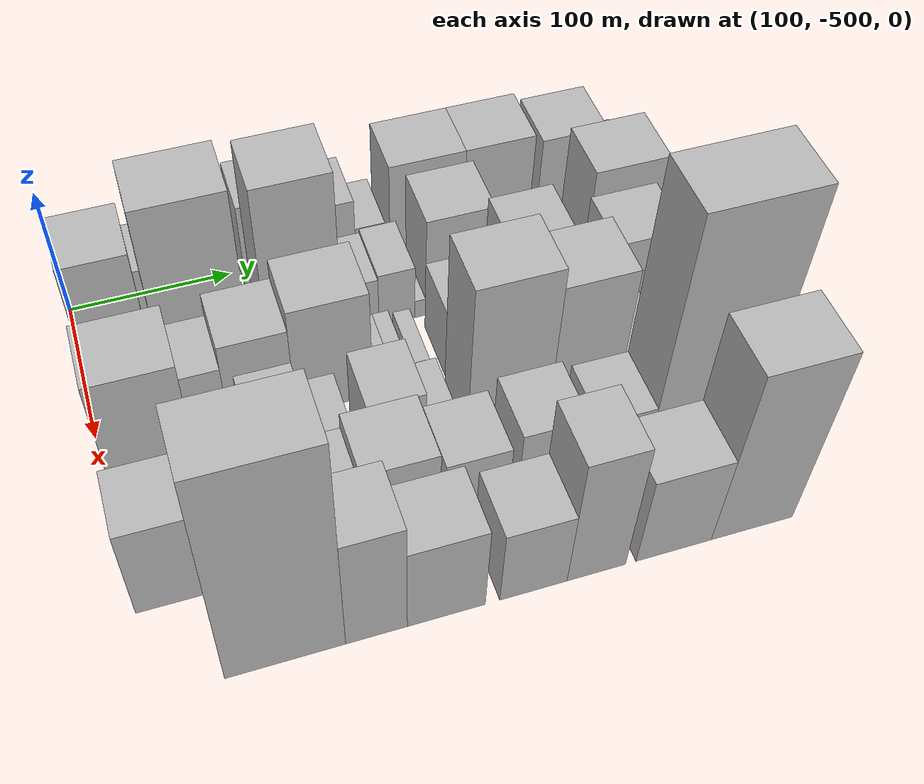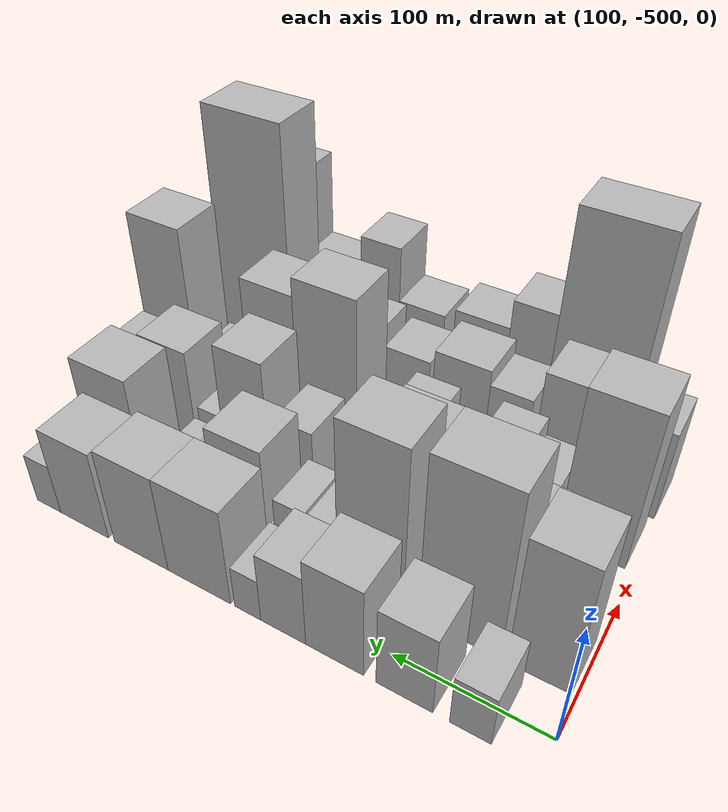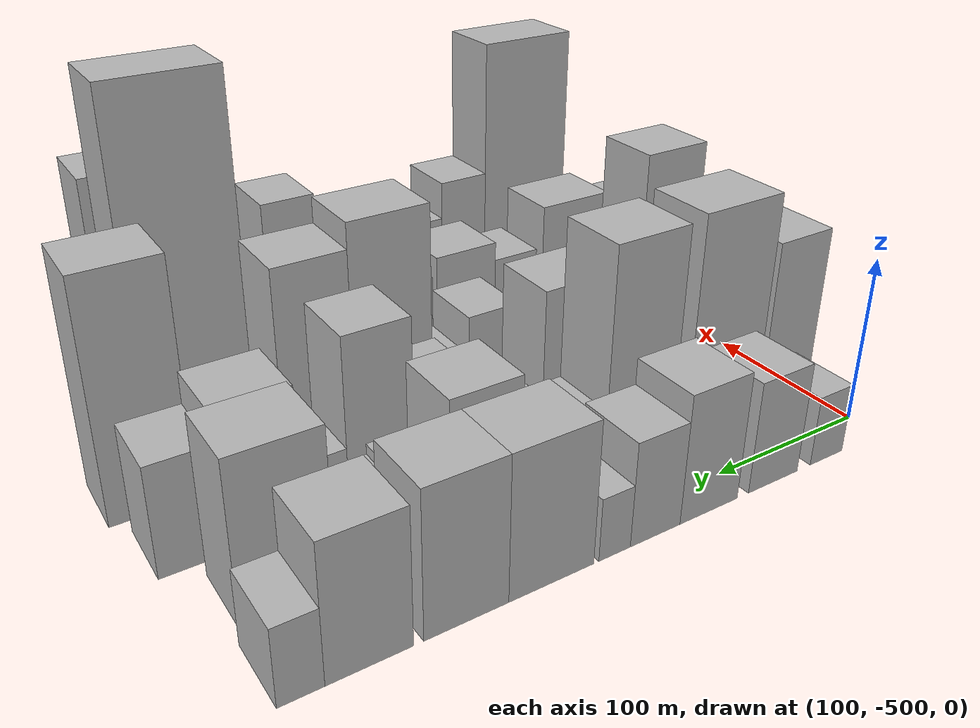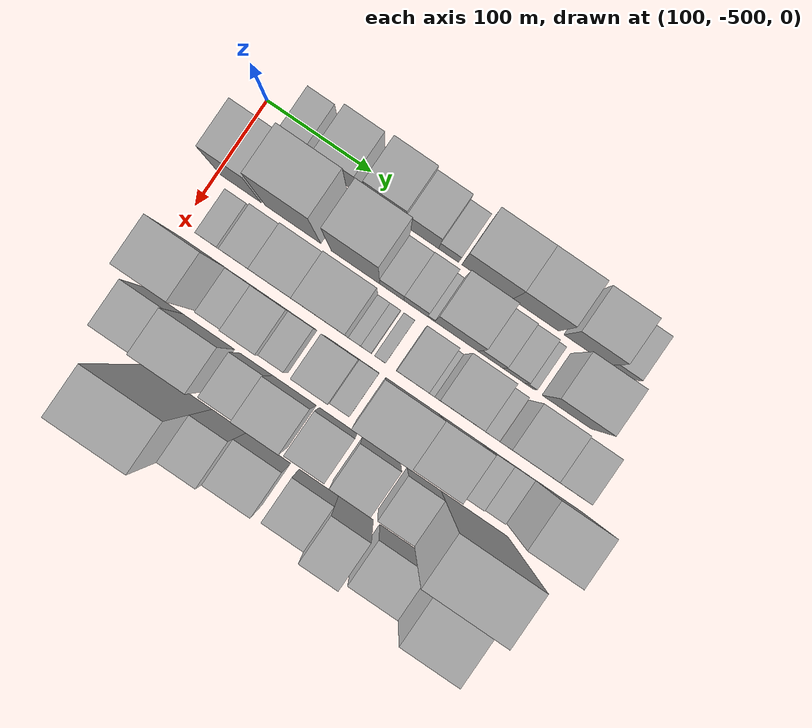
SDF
<sdf version="1.6">
 <world name="default">
  <model name="building_10">
   <static>1</static>
   <pose>100.0000 -459.0425 0 0.000000 0.000000 0.000000</pose>
   <link name="link">
    <pose>0 0 21.00 0 0 0</pose>
    <collision name="collision"><geometry><box><size>40.0000 24.6611 42.0000</size></box></geometry></collision>
    <visual name="visual">
     <cast_shadows>0</cast_shadows>
     <geometry><box><size>40.0000 24.6611 42.0000</size></box></geometry>
     <material>
      <script>
       <uri>model://HANNAS_wall/materials/scripts</uri>
       <uri>model://HANNAS_wall/materials/textures</uri>
       <name>vrc/HANNAS_wall</name>
      </script>
     </material>
    </visual>
   </link>
  </model>
  <model name="building_11">
   <static>1</static>
   <pose>100.0000 -418.9198 0 0.000000 0.000000 0.000000</pose>
   <link name="link">
    <pose>0 0 33.00 0 0 0</pose>
    <collision name="collision"><geometry><box><size>40.0000 35.5843 66.0000</size></box></geometry></collision>
    <visual name="visual">
     <cast_shadows>0</cast_shadows>
     <geometry><box><size>40.0000 35.5843 66.0000</size></box></geometry>
     <material>
      <script>
       <uri>model://HANNAS_wall/materials/scripts</uri>
       <uri>model://HANNAS_wall/materials/textures</uri>
       <name>vrc/HANNAS_wall</name>
      </script>
     </material>
    </visual>
   </link>
  </model>
  <model name="building_12">
   <static>1</static>
   <pose>100.0000 -373.7476 0 0.000000 0.000000 0.000000</pose>
   <link name="link">
    <pose>0 0 37.50 0 0 0</pose>
    <collision name="collision"><geometry><box><size>40.0000 38.7602 75.0000</size></box></geometry></collision>
    <visual name="visual">
     <cast_shadows>0</cast_shadows>
     <geometry><box><size>40.0000 38.7602 75.0000</size></box></geometry>
     <material>
      <script>
       <uri>model://HANNAS_wall/materials/scripts</uri>
       <uri>model://HANNAS_wall/materials/textures</uri>
       <name>vrc/HANNAS_wall</name>
      </script>
     </material>
    </visual>
   </link>
  </model>
  <model name="building_13">
   <static>1</static>
   <pose>100.0000 -338.5559 0 0.000000 0.000000 0.000000</pose>
   <link name="link">
    <pose>0 0 30.00 0 0 0</pose>
    <collision name="collision"><geometry><box><size>40.0000 31.6232 60.0000</size></box></geometry></collision>
    <visual name="visual">
     <cast_shadows>0</cast_shadows>
     <geometry><box><size>40.0000 31.6232 60.0000</size></box></geometry>
     <material>
      <script>
       <uri>model://HANNAS_wall/materials/scripts</uri>
       <uri>model://HANNAS_wall/materials/textures</uri>
       <name>vrc/HANNAS_wall</name>
      </script>
     </material>
    </visual>
   </link>
  </model>
  <model name="building_14">
   <static>1</static>
   <pose>100.0000 -313.1680 0 0.000000 0.000000 0.000000</pose>
   <link name="link">
    <pose>0 0 18.00 0 0 0</pose>
    <collision name="collision"><geometry><box><size>40.0000 19.1526 36.0000</size></box></geometry></collision>
    <visual name="visual">
     <cast_shadows>0</cast_shadows>
     <geometry><box><size>40.0000 19.1526 36.0000</size></box></geometry>
     <material>
      <script>
       <uri>model://HANNAS_wall/materials/scripts</uri>
       <uri>model://HANNAS_wall/materials/textures</uri>
       <name>vrc/HANNAS_wall</name>
      </script>
     </material>
    </visual>
   </link>
  </model>
  <model name="building_15">
   <static>1</static>
   <pose>100.0000 -276.4596 0 0.000000 0.000000 0.000000</pose>
   <link name="link">
    <pose>0 0 40.50 0 0 0</pose>
    <collision name="collision"><geometry><box><size>40.0000 48.2642 81.0000</size></box></geometry></collision>
    <visual name="visual">
     <cast_shadows>0</cast_shadows>
     <geometry><box><size>40.0000 48.2642 81.0000</size></box></geometry>
     <material>
      <script>
       <uri>model://HANNAS_wall/materials/scripts</uri>
       <uri>model://HANNAS_wall/materials/textures</uri>
       <name>vrc/HANNAS_wall</name>
      </script>
     </material>
    </visual>
   </link>
  </model>
  <model name="building_16">
   <static>1</static>
   <pose>100.0000 -230.2445 0 0.000000 0.000000 0.000000</pose>
   <link name="link">
    <pose>0 0 40.50 0 0 0</pose>
    <collision name="collision"><geometry><box><size>40.0000 44.1661 81.0000</size></box></geometry></collision>
    <visual name="visual">
     <cast_shadows>0</cast_shadows>
     <geometry><box><size>40.0000 44.1661 81.0000</size></box></geometry>
     <material>
      <script>
       <uri>model://HANNAS_wall/materials/scripts</uri>
       <uri>model://HANNAS_wall/materials/textures</uri>
       <name>vrc/HANNAS_wall</name>
      </script>
     </material>
    </visual>
   </link>
  </model>
  <model name="building_17">
   <static>1</static>
   <pose>100.0000 -182.2852 0 0.000000 0.000000 0.000000</pose>
   <link name="link">
    <pose>0 0 37.50 0 0 0</pose>
    <collision name="collision"><geometry><box><size>40.0000 41.7525 75.0000</size></box></geometry></collision>
    <visual name="visual">
     <cast_shadows>0</cast_shadows>
     <geometry><box><size>40.0000 41.7525 75.0000</size></box></geometry>
     <material>
      <script>
       <uri>model://HANNAS_wall/materials/scripts</uri>
       <uri>model://HANNAS_wall/materials/textures</uri>
       <name>vrc/HANNAS_wall</name>
      </script>
     </material>
    </visual>
   </link>
  </model>
  <model name="building_18">
   <static>1</static>
   <pose>100.0000 -150.6923 0 0.000000 0.000000 0.000000</pose>
   <link name="link">
    <pose>0 0 21.00 0 0 0</pose>
    <collision name="collision"><geometry><box><size>40.0000 21.4334 42.0000</size></box></geometry></collision>
    <visual name="visual">
     <cast_shadows>0</cast_shadows>
     <geometry><box><size>40.0000 21.4334 42.0000</size></box></geometry>
     <material>
      <script>
       <uri>model://HANNAS_wall/materials/scripts</uri>
       <uri>model://HANNAS_wall/materials/textures</uri>
       <name>vrc/HANNAS_wall</name>
      </script>
     </material>
    </visual>
   </link>
  </model>
  <model name="building_66">
   <static>1</static>
   <pose>149.0000 -477.5847 0 0.000000 0.000000 0.000000</pose>
   <link name="link">
    <pose>0 0 54.00 0 0 0</pose>
    <collision name="collision"><geometry><box><size>40.0000 38.5945 108.0000</size></box></geometry></collision>
    <visual name="visual">
     <cast_shadows>0</cast_shadows>
     <geometry><box><size>40.0000 38.5945 108.0000</size></box></geometry>
     <material>
      <script>
       <uri>model://HANNAS_wall/materials/scripts</uri>
       <uri>model://HANNAS_wall/materials/textures</uri>
       <name>vrc/HANNAS_wall</name>
      </script>
     </material>
    </visual>
   </link>
  </model>
  <model name="building_67">
   <static>1</static>
   <pose>149.0000 -427.8182 0 0.000000 0.000000 0.000000</pose>
   <link name="link">
    <pose>0 0 69.00 0 0 0</pose>
    <collision name="collision"><geometry><box><size>40.0000 52.9387 138.0000</size></box></geometry></collision>
    <visual name="visual">
     <cast_shadows>0</cast_shadows>
     <geometry><box><size>40.0000 52.9387 138.0000</size></box></geometry>
     <material>
      <script>
       <uri>model://HANNAS_wall/materials/scripts</uri>
       <uri>model://HANNAS_wall/materials/textures</uri>
       <name>vrc/HANNAS_wall</name>
      </script>
     </material>
    </visual>
   </link>
  </model>
  <model name="building_68">
   <static>1</static>
   <pose>149.0000 -368.2810 0 0.000000 0.000000 0.000000</pose>
   <link name="link">
    <pose>0 0 67.50 0 0 0</pose>
    <collision name="collision"><geometry><box><size>40.0000 46.1357 135.0000</size></box></geometry></collision>
    <visual name="visual">
     <cast_shadows>0</cast_shadows>
     <geometry><box><size>40.0000 46.1357 135.0000</size></box></geometry>
     <material>
      <script>
       <uri>model://HANNAS_wall/materials/scripts</uri>
       <uri>model://HANNAS_wall/materials/textures</uri>
       <name>vrc/HANNAS_wall</name>
      </script>
     </material>
    </visual>
   </link>
  </model>
  <model name="building_69">
   <static>1</static>
   <pose>149.0000 -333.8725 0 0.000000 0.000000 0.000000</pose>
   <link name="link">
    <pose>0 0 21.00 0 0 0</pose>
    <collision name="collision"><geometry><box><size>40.0000 22.6814 42.0000</size></box></geometry></collision>
    <visual name="visual">
     <cast_shadows>0</cast_shadows>
     <geometry><box><size>40.0000 22.6814 42.0000</size></box></geometry>
     <material>
      <script>
       <uri>model://HANNAS_wall/materials/scripts</uri>
       <uri>model://HANNAS_wall/materials/textures</uri>
       <name>vrc/HANNAS_wall</name>
      </script>
     </material>
    </visual>
   </link>
  </model>
  <model name="building_70">
   <static>1</static>
   <pose>149.0000 -311.1045 0 0.000000 0.000000 0.000000</pose>
   <link name="link">
    <pose>0 0 22.50 0 0 0</pose>
    <collision name="collision"><geometry><box><size>40.0000 22.8545 45.0000</size></box></geometry></collision>
    <visual name="visual">
     <cast_shadows>0</cast_shadows>
     <geometry><box><size>40.0000 22.8545 45.0000</size></box></geometry>
     <material>
      <script>
       <uri>model://HANNAS_wall/materials/scripts</uri>
       <uri>model://HANNAS_wall/materials/textures</uri>
       <name>vrc/HANNAS_wall</name>
      </script>
     </material>
    </visual>
   </link>
  </model>
  <model name="building_71">
   <static>1</static>
   <pose>149.0000 -296.3232 0 0.000000 0.000000 0.000000</pose>
   <link name="link">
    <pose>0 0 7.50 0 0 0</pose>
    <collision name="collision"><geometry><box><size>40.0000 6.7082 15.0000</size></box></geometry></collision>
    <visual name="visual">
     <cast_shadows>0</cast_shadows>
     <geometry><box><size>40.0000 6.7082 15.0000</size></box></geometry>
     <material>
      <script>
       <uri>model://HANNAS_wall/materials/scripts</uri>
       <uri>model://HANNAS_wall/materials/textures</uri>
       <name>vrc/HANNAS_wall</name>
      </script>
     </material>
    </visual>
   </link>
  </model>
  <model name="building_72">
   <static>1</static>
   <pose>149.0000 -272.2100 0 0.000000 0.000000 0.000000</pose>
   <link name="link">
    <pose>0 0 40.50 0 0 0</pose>
    <collision name="collision"><geometry><box><size>40.0000 41.5181 81.0000</size></box></geometry></collision>
    <visual name="visual">
     <cast_shadows>0</cast_shadows>
     <geometry><box><size>40.0000 41.5181 81.0000</size></box></geometry>
     <material>
      <script>
       <uri>model://HANNAS_wall/materials/scripts</uri>
       <uri>model://HANNAS_wall/materials/textures</uri>
       <name>vrc/HANNAS_wall</name>
      </script>
     </material>
    </visual>
   </link>
  </model>
  <model name="building_73">
   <static>1</static>
   <pose>149.0000 -239.9075 0 0.000000 0.000000 0.000000</pose>
   <link name="link">
    <pose>0 0 21.00 0 0 0</pose>
    <collision name="collision"><geometry><box><size>40.0000 23.0868 42.0000</size></box></geometry></collision>
    <visual name="visual">
     <cast_shadows>0</cast_shadows>
     <geometry><box><size>40.0000 23.0868 42.0000</size></box></geometry>
     <material>
      <script>
       <uri>model://HANNAS_wall/materials/scripts</uri>
       <uri>model://HANNAS_wall/materials/textures</uri>
       <name>vrc/HANNAS_wall</name>
      </script>
     </material>
    </visual>
   </link>
  </model>
  <model name="building_74">
   <static>1</static>
   <pose>149.0000 -217.8413 0 0.000000 0.000000 0.000000</pose>
   <link name="link">
    <pose>0 0 18.00 0 0 0</pose>
    <collision name="collision"><geometry><box><size>40.0000 21.0455 36.0000</size></box></geometry></collision>
    <visual name="visual">
     <cast_shadows>0</cast_shadows>
     <geometry><box><size>40.0000 21.0455 36.0000</size></box></geometry>
     <material>
      <script>
       <uri>model://HANNAS_wall/materials/scripts</uri>
       <uri>model://HANNAS_wall/materials/textures</uri>
       <name>vrc/HANNAS_wall</name>
      </script>
     </material>
    </visual>
   </link>
  </model>
  <model name="building_75">
   <static>1</static>
   <pose>149.0000 -202.8934 0 0.000000 0.000000 0.000000</pose>
   <link name="link">
    <pose>0 0 10.50 0 0 0</pose>
    <collision name="collision"><geometry><box><size>40.0000 8.8504 21.0000</size></box></geometry></collision>
    <visual name="visual">
     <cast_shadows>0</cast_shadows>
     <geometry><box><size>40.0000 8.8504 21.0000</size></box></geometry>
     <material>
      <script>
       <uri>model://HANNAS_wall/materials/scripts</uri>
       <uri>model://HANNAS_wall/materials/textures</uri>
       <name>vrc/HANNAS_wall</name>
      </script>
     </material>
    </visual>
   </link>
  </model>
  <model name="building_76">
   <static>1</static>
   <pose>149.0000 -167.0259 0 0.000000 0.000000 0.000000</pose>
   <link name="link">
    <pose>0 0 45.00 0 0 0</pose>
    <collision name="collision"><geometry><box><size>40.0000 46.8847 90.0000</size></box></geometry></collision>
    <visual name="visual">
     <cast_shadows>0</cast_shadows>
     <geometry><box><size>40.0000 46.8847 90.0000</size></box></geometry>
     <material>
      <script>
       <uri>model://HANNAS_wall/materials/scripts</uri>
       <uri>model://HANNAS_wall/materials/textures</uri>
       <name>vrc/HANNAS_wall</name>
      </script>
     </material>
    </visual>
   </link>
  </model>
  <model name="building_115">
   <static>1</static>
   <pose>198.0000 -470.4129 0 0.000000 0.000000 0.000000</pose>
   <link name="link">
    <pose>0 0 18.00 0 0 0</pose>
    <collision name="collision"><geometry><box><size>40.0000 19.6298 36.0000</size></box></geometry></collision>
    <visual name="visual">
     <cast_shadows>0</cast_shadows>
     <geometry><box><size>40.0000 19.6298 36.0000</size></box></geometry>
     <material>
      <script>
       <uri>model://HANNAS_wall/materials/scripts</uri>
       <uri>model://HANNAS_wall/materials/textures</uri>
       <name>vrc/HANNAS_wall</name>
      </script>
     </material>
    </visual>
   </link>
  </model>
  <model name="building_116">
   <static>1</static>
   <pose>198.0000 -440.0784 0 0.000000 0.000000 0.000000</pose>
   <link name="link">
    <pose>0 0 28.50 0 0 0</pose>
    <collision name="collision"><geometry><box><size>40.0000 29.0390 57.0000</size></box></geometry></collision>
    <visual name="visual">
     <cast_shadows>0</cast_shadows>
     <geometry><box><size>40.0000 29.0390 57.0000</size></box></geometry>
     <material>
      <script>
       <uri>model://HANNAS_wall/materials/scripts</uri>
       <uri>model://HANNAS_wall/materials/textures</uri>
       <name>vrc/HANNAS_wall</name>
      </script>
     </material>
    </visual>
   </link>
  </model>
  <model name="building_117">
   <static>1</static>
   <pose>198.0000 -406.1631 0 0.000000 0.000000 0.000000</pose>
   <link name="link">
    <pose>0 0 37.50 0 0 0</pose>
    <collision name="collision"><geometry><box><size>40.0000 38.7917 75.0000</size></box></geometry></collision>
    <visual name="visual">
     <cast_shadows>0</cast_shadows>
     <geometry><box><size>40.0000 38.7917 75.0000</size></box></geometry>
     <material>
      <script>
       <uri>model://HANNAS_wall/materials/scripts</uri>
       <uri>model://HANNAS_wall/materials/textures</uri>
       <name>vrc/HANNAS_wall</name>
      </script>
     </material>
    </visual>
   </link>
  </model>
  <model name="building_118">
   <static>1</static>
   <pose>198.0000 -363.7553 0 0.000000 0.000000 0.000000</pose>
   <link name="link">
    <pose>0 0 45.00 0 0 0</pose>
    <collision name="collision"><geometry><box><size>40.0000 46.0238 90.0000</size></box></geometry></collision>
    <visual name="visual">
     <cast_shadows>0</cast_shadows>
     <geometry><box><size>40.0000 46.0238 90.0000</size></box></geometry>
     <material>
      <script>
       <uri>model://HANNAS_wall/materials/scripts</uri>
       <uri>model://HANNAS_wall/materials/textures</uri>
       <name>vrc/HANNAS_wall</name>
      </script>
     </material>
    </visual>
   </link>
  </model>
  <model name="building_119">
   <static>1</static>
   <pose>198.0000 -334.9804 0 0.000000 0.000000 0.000000</pose>
   <link name="link">
    <pose>0 0 12.00 0 0 0</pose>
    <collision name="collision"><geometry><box><size>40.0000 11.5260 24.0000</size></box></geometry></collision>
    <visual name="visual">
     <cast_shadows>0</cast_shadows>
     <geometry><box><size>40.0000 11.5260 24.0000</size></box></geometry>
     <material>
      <script>
       <uri>model://HANNAS_wall/materials/scripts</uri>
       <uri>model://HANNAS_wall/materials/textures</uri>
       <name>vrc/HANNAS_wall</name>
      </script>
     </material>
    </visual>
   </link>
  </model>
  <model name="building_120">
   <static>1</static>
   <pose>198.0000 -324.3144 0 0.000000 0.000000 0.000000</pose>
   <link name="link">
    <pose>0 0 12.00 0 0 0</pose>
    <collision name="collision"><geometry><box><size>40.0000 9.8062 24.0000</size></box></geometry></collision>
    <visual name="visual">
     <cast_shadows>0</cast_shadows>
     <geometry><box><size>40.0000 9.8062 24.0000</size></box></geometry>
     <material>
      <script>
       <uri>model://HANNAS_wall/materials/scripts</uri>
       <uri>model://HANNAS_wall/materials/textures</uri>
       <name>vrc/HANNAS_wall</name>
      </script>
     </material>
    </visual>
   </link>
  </model>
  <model name="building_121">
   <static>1</static>
   <pose>198.0000 -311.2843 0 0.000000 0.000000 0.000000</pose>
   <link name="link">
    <pose>0 0 10.50 0 0 0</pose>
    <collision name="collision"><geometry><box><size>40.0000 10.2540 21.0000</size></box></geometry></collision>
    <visual name="visual">
     <cast_shadows>0</cast_shadows>
     <geometry><box><size>40.0000 10.2540 21.0000</size></box></geometry>
     <material>
      <script>
       <uri>model://HANNAS_wall/materials/scripts</uri>
       <uri>model://HANNAS_wall/materials/textures</uri>
       <name>vrc/HANNAS_wall</name>
      </script>
     </material>
    </visual>
   </link>
  </model>
  <model name="building_122">
   <static>1</static>
   <pose>198.0000 -281.6375 0 0.000000 0.000000 0.000000</pose>
   <link name="link">
    <pose>0 0 28.50 0 0 0</pose>
    <collision name="collision"><geometry><box><size>40.0000 29.0395 57.0000</size></box></geometry></collision>
    <visual name="visual">
     <cast_shadows>0</cast_shadows>
     <geometry><box><size>40.0000 29.0395 57.0000</size></box></geometry>
     <material>
      <script>
       <uri>model://HANNAS_wall/materials/scripts</uri>
       <uri>model://HANNAS_wall/materials/textures</uri>
       <name>vrc/HANNAS_wall</name>
      </script>
     </material>
    </visual>
   </link>
  </model>
  <model name="building_123">
   <static>1</static>
   <pose>198.0000 -263.5571 0 0.000000 0.000000 0.000000</pose>
   <link name="link">
    <pose>0 0 7.50 0 0 0</pose>
    <collision name="collision"><geometry><box><size>40.0000 7.1214 15.0000</size></box></geometry></collision>
    <visual name="visual">
     <cast_shadows>0</cast_shadows>
     <geometry><box><size>40.0000 7.1214 15.0000</size></box></geometry>
     <material>
      <script>
       <uri>model://HANNAS_wall/materials/scripts</uri>
       <uri>model://HANNAS_wall/materials/textures</uri>
       <name>vrc/HANNAS_wall</name>
      </script>
     </material>
    </visual>
   </link>
  </model>
  <model name="building_124">
   <static>1</static>
   <pose>198.0000 -241.0578 0 0.000000 0.000000 0.000000</pose>
   <link name="link">
    <pose>0 0 49.50 0 0 0</pose>
    <collision name="collision"><geometry><box><size>40.0000 37.8770 99.0000</size></box></geometry></collision>
    <visual name="visual">
     <cast_shadows>0</cast_shadows>
     <geometry><box><size>40.0000 37.8770 99.0000</size></box></geometry>
     <material>
      <script>
       <uri>model://HANNAS_wall/materials/scripts</uri>
       <uri>model://HANNAS_wall/materials/textures</uri>
       <name>vrc/HANNAS_wall</name>
      </script>
     </material>
    </visual>
   </link>
  </model>
  <model name="building_125">
   <static>1</static>
   <pose>198.0000 -212.0112 0 0.000000 0.000000 0.000000</pose>
   <link name="link">
    <pose>0 0 18.00 0 0 0</pose>
    <collision name="collision"><geometry><box><size>40.0000 20.2162 36.0000</size></box></geometry></collision>
    <visual name="visual">
     <cast_shadows>0</cast_shadows>
     <geometry><box><size>40.0000 20.2162 36.0000</size></box></geometry>
     <material>
      <script>
       <uri>model://HANNAS_wall/materials/scripts</uri>
       <uri>model://HANNAS_wall/materials/textures</uri>
       <name>vrc/HANNAS_wall</name>
      </script>
     </material>
    </visual>
   </link>
  </model>
  <model name="building_126">
   <static>1</static>
   <pose>198.0000 -176.3773 0 0.000000 0.000000 0.000000</pose>
   <link name="link">
    <pose>0 0 40.50 0 0 0</pose>
    <collision name="collision"><geometry><box><size>40.0000 41.0515 81.0000</size></box></geometry></collision>
    <visual name="visual">
     <cast_shadows>0</cast_shadows>
     <geometry><box><size>40.0000 41.0515 81.0000</size></box></geometry>
     <material>
      <script>
       <uri>model://HANNAS_wall/materials/scripts</uri>
       <uri>model://HANNAS_wall/materials/textures</uri>
       <name>vrc/HANNAS_wall</name>
      </script>
     </material>
    </visual>
   </link>
  </model>
  <model name="building_127">
   <static>1</static>
   <pose>198.0000 -139.7069 0 0.000000 0.000000 0.000000</pose>
   <link name="link">
    <pose>0 0 31.50 0 0 0</pose>
    <collision name="collision"><geometry><box><size>40.0000 32.2893 63.0000</size></box></geometry></collision>
    <visual name="visual">
     <cast_shadows>0</cast_shadows>
     <geometry><box><size>40.0000 32.2893 63.0000</size></box></geometry>
     <material>
      <script>
       <uri>model://HANNAS_wall/materials/scripts</uri>
       <uri>model://HANNAS_wall/materials/textures</uri>
       <name>vrc/HANNAS_wall</name>
      </script>
     </material>
    </visual>
   </link>
  </model>
  <model name="building_168">
   <static>1</static>
   <pose>247.0000 -471.5757 0 0.000000 0.000000 0.000000</pose>
   <link name="link">
    <pose>0 0 64.50 0 0 0</pose>
    <collision name="collision"><geometry><box><size>40.0000 45.2001 129.0000</size></box></geometry></collision>
    <visual name="visual">
     <cast_shadows>0</cast_shadows>
     <geometry><box><size>40.0000 45.2001 129.0000</size></box></geometry>
     <material>
      <script>
       <uri>model://HANNAS_wall/materials/scripts</uri>
       <uri>model://HANNAS_wall/materials/textures</uri>
       <name>vrc/HANNAS_wall</name>
      </script>
     </material>
    </visual>
   </link>
  </model>
  <model name="building_169">
   <static>1</static>
   <pose>247.0000 -432.3888 0 0.000000 0.000000 0.000000</pose>
   <link name="link">
    <pose>0 0 22.50 0 0 0</pose>
    <collision name="collision"><geometry><box><size>40.0000 25.1737 45.0000</size></box></geometry></collision>
    <visual name="visual">
     <cast_shadows>0</cast_shadows>
     <geometry><box><size>40.0000 25.1737 45.0000</size></box></geometry>
     <material>
      <script>
       <uri>model://HANNAS_wall/materials/scripts</uri>
       <uri>model://HANNAS_wall/materials/textures</uri>
       <name>vrc/HANNAS_wall</name>
      </script>
     </material>
    </visual>
   </link>
  </model>
  <model name="building_170">
   <static>1</static>
   <pose>247.0000 -403.9868 0 0.000000 0.000000 0.000000</pose>
   <link name="link">
    <pose>0 0 30.00 0 0 0</pose>
    <collision name="collision"><geometry><box><size>40.0000 31.6303 60.0000</size></box></geometry></collision>
    <visual name="visual">
     <cast_shadows>0</cast_shadows>
     <geometry><box><size>40.0000 31.6303 60.0000</size></box></geometry>
     <material>
      <script>
       <uri>model://HANNAS_wall/materials/scripts</uri>
       <uri>model://HANNAS_wall/materials/textures</uri>
       <name>vrc/HANNAS_wall</name>
      </script>
     </material>
    </visual>
   </link>
  </model>
  <model name="building_171">
   <static>1</static>
   <pose>247.0000 -376.6970 0 0.000000 0.000000 0.000000</pose>
   <link name="link">
    <pose>0 0 21.00 0 0 0</pose>
    <collision name="collision"><geometry><box><size>40.0000 22.9494 42.0000</size></box></geometry></collision>
    <visual name="visual">
     <cast_shadows>0</cast_shadows>
     <geometry><box><size>40.0000 22.9494 42.0000</size></box></geometry>
     <material>
      <script>
       <uri>model://HANNAS_wall/materials/scripts</uri>
       <uri>model://HANNAS_wall/materials/textures</uri>
       <name>vrc/HANNAS_wall</name>
      </script>
     </material>
    </visual>
   </link>
  </model>
  <model name="building_172">
   <static>1</static>
   <pose>247.0000 -340.5945 0 0.000000 0.000000 0.000000</pose>
   <link name="link">
    <pose>0 0 28.50 0 0 0</pose>
    <collision name="collision"><geometry><box><size>40.0000 33.2554 57.0000</size></box></geometry></collision>
    <visual name="visual">
     <cast_shadows>0</cast_shadows>
     <geometry><box><size>40.0000 33.2554 57.0000</size></box></geometry>
     <material>
      <script>
       <uri>model://HANNAS_wall/materials/scripts</uri>
       <uri>model://HANNAS_wall/materials/textures</uri>
       <name>vrc/HANNAS_wall</name>
      </script>
     </material>
    </visual>
   </link>
  </model>
  <model name="building_173">
   <static>1</static>
   <pose>247.0000 -314.8777 0 0.000000 0.000000 0.000000</pose>
   <link name="link">
    <pose>0 0 16.50 0 0 0</pose>
    <collision name="collision"><geometry><box><size>40.0000 18.1783 33.0000</size></box></geometry></collision>
    <visual name="visual">
     <cast_shadows>0</cast_shadows>
     <geometry><box><size>40.0000 18.1783 33.0000</size></box></geometry>
     <material>
      <script>
       <uri>model://HANNAS_wall/materials/scripts</uri>
       <uri>model://HANNAS_wall/materials/textures</uri>
       <name>vrc/HANNAS_wall</name>
      </script>
     </material>
    </visual>
   </link>
  </model>
  <model name="building_174">
   <static>1</static>
   <pose>247.0000 -275.4045 0 0.000000 0.000000 0.000000</pose>
   <link name="link">
    <pose>0 0 66.00 0 0 0</pose>
    <collision name="collision"><geometry><box><size>40.0000 48.7681 132.0000</size></box></geometry></collision>
    <visual name="visual">
     <cast_shadows>0</cast_shadows>
     <geometry><box><size>40.0000 48.7681 132.0000</size></box></geometry>
     <material>
      <script>
       <uri>model://HANNAS_wall/materials/scripts</uri>
       <uri>model://HANNAS_wall/materials/textures</uri>
       <name>vrc/HANNAS_wall</name>
      </script>
     </material>
    </visual>
   </link>
  </model>
  <model name="building_175">
   <static>1</static>
   <pose>247.0000 -229.9747 0 0.000000 0.000000 0.000000</pose>
   <link name="link">
    <pose>0 0 58.50 0 0 0</pose>
    <collision name="collision"><geometry><box><size>40.0000 42.0915 117.0000</size></box></geometry></collision>
    <visual name="visual">
     <cast_shadows>0</cast_shadows>
     <geometry><box><size>40.0000 42.0915 117.0000</size></box></geometry>
     <material>
      <script>
       <uri>model://HANNAS_wall/materials/scripts</uri>
       <uri>model://HANNAS_wall/materials/textures</uri>
       <name>vrc/HANNAS_wall</name>
      </script>
     </material>
    </visual>
   </link>
  </model>
  <model name="building_176">
   <static>1</static>
   <pose>247.0000 -196.1722 0 0.000000 0.000000 0.000000</pose>
   <link name="link">
    <pose>0 0 24.00 0 0 0</pose>
    <collision name="collision"><geometry><box><size>40.0000 25.5135 48.0000</size></box></geometry></collision>
    <visual name="visual">
     <cast_shadows>0</cast_shadows>
     <geometry><box><size>40.0000 25.5135 48.0000</size></box></geometry>
     <material>
      <script>
       <uri>model://HANNAS_wall/materials/scripts</uri>
       <uri>model://HANNAS_wall/materials/textures</uri>
       <name>vrc/HANNAS_wall</name>
      </script>
     </material>
    </visual>
   </link>
  </model>
  <model name="building_177">
   <static>1</static>
   <pose>247.0000 -173.1141 0 0.000000 0.000000 0.000000</pose>
   <link name="link">
    <pose>0 0 18.00 0 0 0</pose>
    <collision name="collision"><geometry><box><size>40.0000 20.6027 36.0000</size></box></geometry></collision>
    <visual name="visual">
     <cast_shadows>0</cast_shadows>
     <geometry><box><size>40.0000 20.6027 36.0000</size></box></geometry>
     <material>
      <script>
       <uri>model://HANNAS_wall/materials/scripts</uri>
       <uri>model://HANNAS_wall/materials/textures</uri>
       <name>vrc/HANNAS_wall</name>
      </script>
     </material>
    </visual>
   </link>
  </model>
  <model name="building_178">
   <static>1</static>
   <pose>247.0000 -137.2430 0 0.000000 0.000000 0.000000</pose>
   <link name="link">
    <pose>0 0 69.00 0 0 0</pose>
    <collision name="collision"><geometry><box><size>40.0000 45.1396 138.0000</size></box></geometry></collision>
    <visual name="visual">
     <cast_shadows>0</cast_shadows>
     <geometry><box><size>40.0000 45.1396 138.0000</size></box></geometry>
     <material>
      <script>
       <uri>model://HANNAS_wall/materials/scripts</uri>
       <uri>model://HANNAS_wall/materials/textures</uri>
       <name>vrc/HANNAS_wall</name>
      </script>
     </material>
    </visual>
   </link>
  </model>
  <model name="building_214">
   <static>1</static>
   <pose>296.0000 -478.5288 0 0.000000 0.000000 0.000000</pose>
   <link name="link">
    <pose>0 0 37.50 0 0 0</pose>
    <collision name="collision"><geometry><box><size>40.0000 37.5052 75.0000</size></box></geometry></collision>
    <visual name="visual">
     <cast_shadows>0</cast_shadows>
     <geometry><box><size>40.0000 37.5052 75.0000</size></box></geometry>
     <material>
      <script>
       <uri>model://HANNAS_wall/materials/scripts</uri>
       <uri>model://HANNAS_wall/materials/textures</uri>
       <name>vrc/HANNAS_wall</name>
      </script>
     </material>
    </visual>
   </link>
  </model>
  <model name="building_215">
   <static>1</static>
   <pose>296.0000 -434.9857 0 0.000000 0.000000 0.000000</pose>
   <link name="link">
    <pose>0 0 43.50 0 0 0</pose>
    <collision name="collision"><geometry><box><size>40.0000 49.5810 87.0000</size></box></geometry></collision>
    <visual name="visual">
     <cast_shadows>0</cast_shadows>
     <geometry><box><size>40.0000 49.5810 87.0000</size></box></geometry>
     <material>
      <script>
       <uri>model://HANNAS_wall/materials/scripts</uri>
       <uri>model://HANNAS_wall/materials/textures</uri>
       <name>vrc/HANNAS_wall</name>
      </script>
     </material>
    </visual>
   </link>
  </model>
  <model name="building_216">
   <static>1</static>
   <pose>296.0000 -389.6998 0 0.000000 0.000000 0.000000</pose>
   <link name="link">
    <pose>0 0 30.00 0 0 0</pose>
    <collision name="collision"><geometry><box><size>40.0000 30.9909 60.0000</size></box></geometry></collision>
    <visual name="visual">
     <cast_shadows>0</cast_shadows>
     <geometry><box><size>40.0000 30.9909 60.0000</size></box></geometry>
     <material>
      <script>
       <uri>model://HANNAS_wall/materials/scripts</uri>
       <uri>model://HANNAS_wall/materials/textures</uri>
       <name>vrc/HANNAS_wall</name>
      </script>
     </material>
    </visual>
   </link>
  </model>
  <model name="building_217">
   <static>1</static>
   <pose>296.0000 -353.2318 0 0.000000 0.000000 0.000000</pose>
   <link name="link">
    <pose>0 0 36.00 0 0 0</pose>
    <collision name="collision"><geometry><box><size>40.0000 41.9450 72.0000</size></box></geometry></collision>
    <visual name="visual">
     <cast_shadows>0</cast_shadows>
     <geometry><box><size>40.0000 41.9450 72.0000</size></box></geometry>
     <material>
      <script>
       <uri>model://HANNAS_wall/materials/scripts</uri>
       <uri>model://HANNAS_wall/materials/textures</uri>
       <name>vrc/HANNAS_wall</name>
      </script>
     </material>
    </visual>
   </link>
  </model>
  <model name="building_218">
   <static>1</static>
   <pose>296.0000 -311.2627 0 0.000000 0.000000 0.000000</pose>
   <link name="link">
    <pose>0 0 30.00 0 0 0</pose>
    <collision name="collision"><geometry><box><size>40.0000 35.9932 60.0000</size></box></geometry></collision>
    <visual name="visual">
     <cast_shadows>0</cast_shadows>
     <geometry><box><size>40.0000 35.9932 60.0000</size></box></geometry>
     <material>
      <script>
       <uri>model://HANNAS_wall/materials/scripts</uri>
       <uri>model://HANNAS_wall/materials/textures</uri>
       <name>vrc/HANNAS_wall</name>
      </script>
     </material>
    </visual>
   </link>
  </model>
  <model name="building_219">
   <static>1</static>
   <pose>296.0000 -270.1028 0 0.000000 0.000000 0.000000</pose>
   <link name="link">
    <pose>0 0 34.50 0 0 0</pose>
    <collision name="collision"><geometry><box><size>40.0000 36.3265 69.0000</size></box></geometry></collision>
    <visual name="visual">
     <cast_shadows>0</cast_shadows>
     <geometry><box><size>40.0000 36.3265 69.0000</size></box></geometry>
     <material>
      <script>
       <uri>model://HANNAS_wall/materials/scripts</uri>
       <uri>model://HANNAS_wall/materials/textures</uri>
       <name>vrc/HANNAS_wall</name>
      </script>
     </material>
    </visual>
   </link>
  </model>
  <model name="building_220">
   <static>1</static>
   <pose>296.0000 -229.6660 0 0.000000 0.000000 0.000000</pose>
   <link name="link">
    <pose>0 0 31.50 0 0 0</pose>
    <collision name="collision"><geometry><box><size>40.0000 32.5473 63.0000</size></box></geometry></collision>
    <visual name="visual">
     <cast_shadows>0</cast_shadows>
     <geometry><box><size>40.0000 32.5473 63.0000</size></box></geometry>
     <material>
      <script>
       <uri>model://HANNAS_wall/materials/scripts</uri>
       <uri>model://HANNAS_wall/materials/textures</uri>
       <name>vrc/HANNAS_wall</name>
      </script>
     </material>
    </visual>
   </link>
  </model>
  <model name="building_221">
   <static>1</static>
   <pose>296.0000 -181.6082 0 0.000000 0.000000 0.000000</pose>
   <link name="link">
    <pose>0 0 103.50 0 0 0</pose>
    <collision name="collision"><geometry><box><size>40.0000 63.5683 207.0000</size></box></geometry></collision>
    <visual name="visual">
     <cast_shadows>0</cast_shadows>
     <geometry><box><size>40.0000 63.5683 207.0000</size></box></geometry>
     <material>
      <script>
       <uri>model://HANNAS_wall/materials/scripts</uri>
       <uri>model://HANNAS_wall/materials/textures</uri>
       <name>vrc/HANNAS_wall</name>
      </script>
     </material>
    </visual>
   </link>
  </model>
  <model name="building_262">
   <static>1</static>
   <pose>345.0000 -429.7491 0 0.000000 0.000000 0.000000</pose>
   <link name="link">
    <pose>0 0 90.00 0 0 0</pose>
    <collision name="collision"><geometry><box><size>40.0000 62.8036 180.0000</size></box></geometry></collision>
    <visual name="visual">
     <cast_shadows>0</cast_shadows>
     <geometry><box><size>40.0000 62.8036 180.0000</size></box></geometry>
     <material>
      <script>
       <uri>model://HANNAS_wall/materials/scripts</uri>
       <uri>model://HANNAS_wall/materials/textures</uri>
       <name>vrc/HANNAS_wall</name>
      </script>
     </material>
    </visual>
   </link>
  </model>
  <model name="building_263">
   <static>1</static>
   <pose>345.0000 -381.9433 0 0.000000 0.000000 0.000000</pose>
   <link name="link">
    <pose>0 0 48.00 0 0 0</pose>
    <collision name="collision"><geometry><box><size>40.0000 32.8082 96.0000</size></box></geometry></collision>
    <visual name="visual">
     <cast_shadows>0</cast_shadows>
     <geometry><box><size>40.0000 32.8082 96.0000</size></box></geometry>
     <material>
      <script>
       <uri>model://HANNAS_wall/materials/scripts</uri>
       <uri>model://HANNAS_wall/materials/textures</uri>
       <name>vrc/HANNAS_wall</name>
      </script>
     </material>
    </visual>
   </link>
  </model>
  <model name="building_264">
   <static>1</static>
   <pose>345.0000 -344.3649 0 0.000000 0.000000 0.000000</pose>
   <link name="link">
    <pose>0 0 36.00 0 0 0</pose>
    <collision name="collision"><geometry><box><size>40.0000 42.3486 72.0000</size></box></geometry></collision>
    <visual name="visual">
     <cast_shadows>0</cast_shadows>
     <geometry><box><size>40.0000 42.3486 72.0000</size></box></geometry>
     <material>
      <script>
       <uri>model://HANNAS_wall/materials/scripts</uri>
       <uri>model://HANNAS_wall/materials/textures</uri>
       <name>vrc/HANNAS_wall</name>
      </script>
     </material>
    </visual>
   </link>
  </model>
  <model name="building_265">
   <static>1</static>
   <pose>345.0000 -296.4367 0 0.000000 0.000000 0.000000</pose>
   <link name="link">
    <pose>0 0 31.50 0 0 0</pose>
    <collision name="collision"><geometry><box><size>40.0000 37.5078 63.0000</size></box></geometry></collision>
    <visual name="visual">
     <cast_shadows>0</cast_shadows>
     <geometry><box><size>40.0000 37.5078 63.0000</size></box></geometry>
     <material>
      <script>
       <uri>model://HANNAS_wall/materials/scripts</uri>
       <uri>model://HANNAS_wall/materials/textures</uri>
       <name>vrc/HANNAS_wall</name>
      </script>
     </material>
    </visual>
   </link>
  </model>
  <model name="building_266">
   <static>1</static>
   <pose>345.0000 -261.0344 0 0.000000 0.000000 0.000000</pose>
   <link name="link">
    <pose>0 0 54.00 0 0 0</pose>
    <collision name="collision"><geometry><box><size>40.0000 33.2969 108.0000</size></box></geometry></collision>
    <visual name="visual">
     <cast_shadows>0</cast_shadows>
     <geometry><box><size>40.0000 33.2969 108.0000</size></box></geometry>
     <material>
      <script>
       <uri>model://HANNAS_wall/materials/scripts</uri>
       <uri>model://HANNAS_wall/materials/textures</uri>
       <name>vrc/HANNAS_wall</name>
      </script>
     </material>
    </visual>
   </link>
  </model>
  <model name="building_267">
   <static>1</static>
   <pose>345.0000 -216.4704 0 0.000000 0.000000 0.000000</pose>
   <link name="link">
    <pose>0 0 37.50 0 0 0</pose>
    <collision name="collision"><geometry><box><size>40.0000 43.8311 75.0000</size></box></geometry></collision>
    <visual name="visual">
     <cast_shadows>0</cast_shadows>
     <geometry><box><size>40.0000 43.8311 75.0000</size></box></geometry>
     <material>
      <script>
       <uri>model://HANNAS_wall/materials/scripts</uri>
       <uri>model://HANNAS_wall/materials/textures</uri>
       <name>vrc/HANNAS_wall</name>
      </script>
     </material>
    </visual>
   </link>
  </model>
  <model name="building_268">
   <static>1</static>
   <pose>345.0000 -170.3886 0 0.000000 0.000000 0.000000</pose>
   <link name="link">
    <pose>0 0 72.00 0 0 0</pose>
    <collision name="collision"><geometry><box><size>40.0000 48.3325 144.0000</size></box></geometry></collision>
    <visual name="visual">
     <cast_shadows>0</cast_shadows>
     <geometry><box><size>40.0000 48.3325 144.0000</size></box></geometry>
     <material>
      <script>
       <uri>model://HANNAS_wall/materials/scripts</uri>
       <uri>model://HANNAS_wall/materials/textures</uri>
       <name>vrc/HANNAS_wall</name>
      </script>
     </material>
    </visual>
   </link>
  </model>
 </world>
</sdf>
